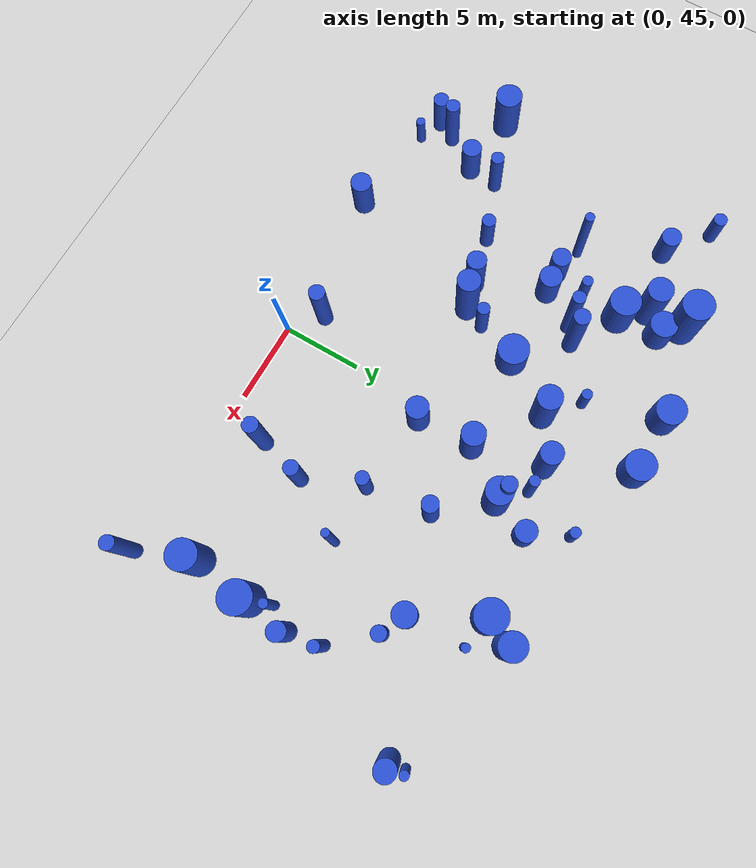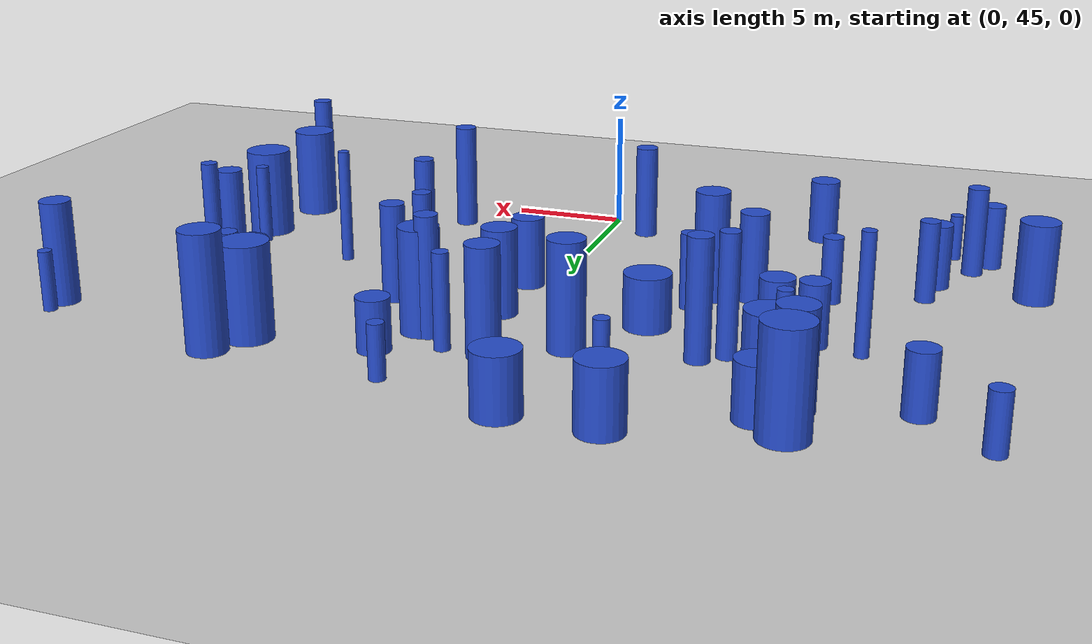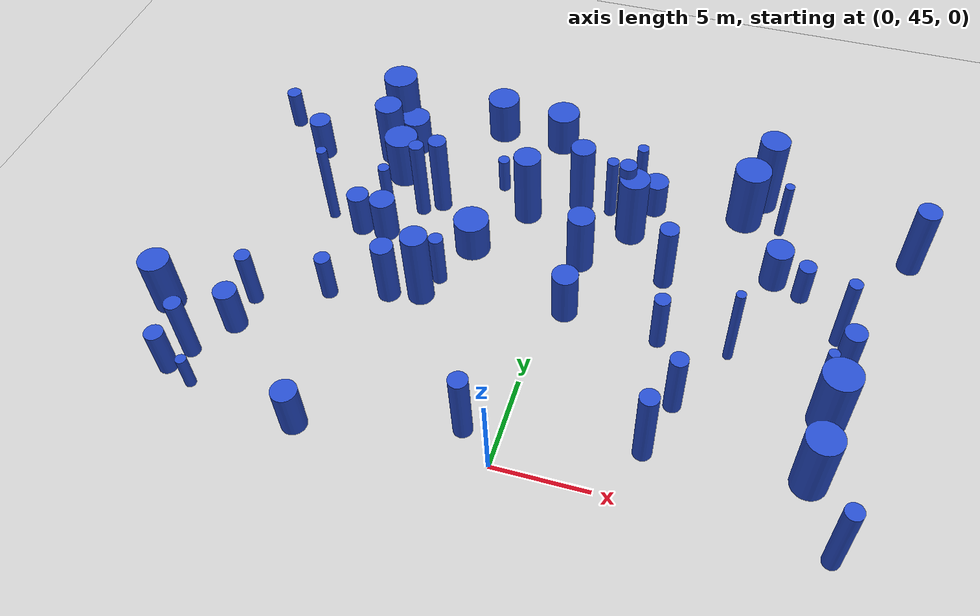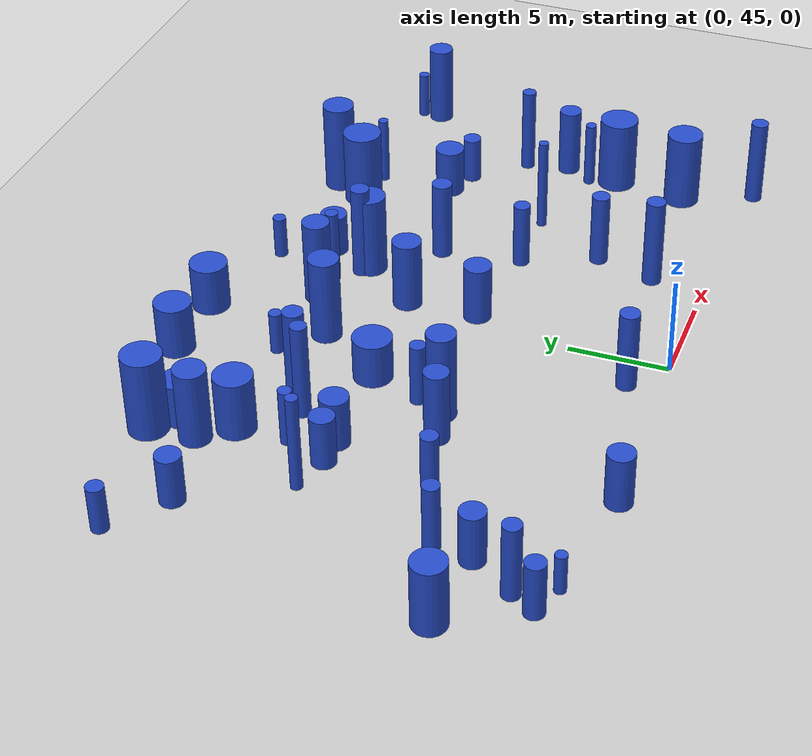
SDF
<sdf version="1.7">
 <world name="default">
  <model name="ground_plane">
   <static>1</static>
   <link name="link">
    <collision name="collision">
     <geometry><plane><normal>0 0 1</normal><size>100 100</size></plane></geometry>
     <surface>
      <contact><collide_bitmask>65535</collide_bitmask></contact>
      <friction><ode><mu>100</mu><mu2>50</mu2></ode></friction>
     </surface>
    </collision>
    <visual name="visual">
     <cast_shadows>0</cast_shadows>
     <geometry><plane><normal>0 0 1</normal><size>100 100</size></plane></geometry>
     <material>
      <script><uri>file://media/materials/scripts/gazebo.material</uri><name>Gazebo/Grey</name></script>
     </material>
    </visual>
   </link>
  </model>
  <model name="13">
   <static>0</static>
   <link name="link">
    <inertial>
     <mass>2</mass>
     <inertia><ixx>1.38583</ixx><ixy>0</ixy><ixz>0</ixz><iyy>1.38583</iyy><iyz>0</iyz><izz>0.558637</izz></inertia>
    </inertial>
    <collision name="collision">
     <geometry><cylinder><length>2.57664</length><radius>0.74742</radius></cylinder></geometry>
     <surface><contact><collide_without_contact>1</collide_without_contact></contact></surface>
    </collision>
    <visual name="visual">
     <geometry><cylinder><length>2.57664</length><radius>0.74742</radius></cylinder></geometry>
     <material>
      <script><uri>file://media/materials/scripts/gazebo.material</uri><name>Gazebo/Blue</name></script>
     </material>
    </visual>
    <gravity>0</gravity>
   </link>
   <pose>11.4004 60.1209 1.28832 0 -0 0</pose>
  </model>
  <model name="27">
   <static>0</static>
   <link name="link">
    <inertial>
     <mass>2</mass>
     <inertia><ixx>2.58788</ixx><ixy>0</ixy><ixz>0</ixz><iyy>2.58788</iyy><iyz>0</iyz><izz>0.212332</izz></inertia>
    </inertial>
    <collision name="collision">
     <geometry><cylinder><length>3.85879</length><radius>0.460795</radius></cylinder></geometry>
     <surface><contact><collide_without_contact>1</collide_without_contact></contact></surface>
    </collision>
    <visual name="visual">
     <geometry><cylinder><length>3.85879</length><radius>0.460795</radius></cylinder></geometry>
     <material>
      <script><uri>file://media/materials/scripts/gazebo.material</uri><name>Gazebo/Blue</name></script>
     </material>
    </visual>
    <gravity>0</gravity>
   </link>
   <pose>7.67121 50.7402 1.92939 0 -0 0</pose>
  </model>
  <model name="41">
   <static>0</static>
   <link name="link">
    <inertial>
     <mass>2</mass>
     <inertia><ixx>4.24794</ixx><ixy>0</ixy><ixz>0</ixz><iyy>4.24794</iyy><iyz>0</iyz><izz>0.162608</izz></inertia>
    </inertial>
    <collision name="collision">
     <geometry><cylinder><length>4.99998</length><radius>0.403246</radius></cylinder></geometry>
     <surface><contact><collide_without_contact>1</collide_without_contact></contact></surface>
    </collision>
    <visual name="visual">
     <geometry><cylinder><length>4.99998</length><radius>0.403246</radius></cylinder></geometry>
     <material>
      <script><uri>file://media/materials/scripts/gazebo.material</uri><name>Gazebo/Blue</name></script>
     </material>
    </visual>
    <gravity>0</gravity>
   </link>
   <pose>-8.70784 60.096 2.49999 0 -0 0</pose>
  </model>
  <model name="42">
   <static>0</static>
   <link name="link">
    <inertial>
     <mass>2</mass>
     <inertia>
      <ixx>4.19788</ixx>
      <ixy>0</ixy>
      <ixz>0</ixz>
      <iyy>4.19788</iyy>
      <iyz>0</iyz>
      <izz>0.0844153</izz>
     </inertia>
    </inertial>
    <collision name="collision">
     <geometry><cylinder><length>4.9934</length><radius>0.290543</radius></cylinder></geometry>
     <surface><contact><collide_without_contact>1</collide_without_contact></contact></surface>
    </collision>
    <visual name="visual">
     <geometry><cylinder><length>4.9934</length><radius>0.290543</radius></cylinder></geometry>
     <material>
      <script><uri>file://media/materials/scripts/gazebo.material</uri><name>Gazebo/Blue</name></script>
     </material>
    </visual>
    <gravity>0</gravity>
   </link>
   <pose>-13.4904 58.3486 2.4967 0 -0 0</pose>
  </model>
  <model name="56">
   <static>0</static>
   <link name="link">
    <inertial>
     <mass>2</mass>
     <inertia><ixx>1.56191</ixx><ixy>0</ixy><ixz>0</ixz><iyy>1.56191</iyy><iyz>0</iyz><izz>0.435046</izz></inertia>
    </inertial>
    <collision name="collision">
     <geometry><cylinder><length>2.84013</length><radius>0.65958</radius></cylinder></geometry>
     <surface><contact><collide_without_contact>1</collide_without_contact></contact></surface>
    </collision>
    <visual name="visual">
     <geometry><cylinder><length>2.84013</length><radius>0.65958</radius></cylinder></geometry>
     <material>
      <script><uri>file://media/materials/scripts/gazebo.material</uri><name>Gazebo/Blue</name></script>
     </material>
    </visual>
    <gravity>0</gravity>
   </link>
   <pose>-9.80475 44.7342 1.42006 0 -0 0</pose>
  </model>
  <model name="59">
   <static>0</static>
   <link name="link">
    <inertial>
     <mass>2</mass>
     <inertia><ixx>1.77923</ixx><ixy>0</ixy><ixz>0</ixz><iyy>1.77923</iyy><iyz>0</iyz><izz>0.488407</izz></inertia>
    </inertial>
    <collision name="collision">
     <geometry><cylinder><length>3.03483</length><radius>0.698861</radius></cylinder></geometry>
     <surface><contact><collide_without_contact>1</collide_without_contact></contact></surface>
    </collision>
    <visual name="visual">
     <geometry><cylinder><length>3.03483</length><radius>0.698861</radius></cylinder></geometry>
     <material>
      <script><uri>file://media/materials/scripts/gazebo.material</uri><name>Gazebo/Blue</name></script>
     </material>
    </visual>
    <gravity>0</gravity>
   </link>
   <pose>1.05025 54.9919 1.51741 0 -0 0</pose>
  </model>
  <model name="64">
   <static>0</static>
   <link name="link">
    <inertial>
     <mass>2</mass>
     <inertia><ixx>3.05222</ixx><ixy>0</ixy><ixz>0</ixz><iyy>3.05222</iyy><iyz>0</iyz><izz>0.246295</izz></inertia>
    </inertial>
    <collision name="collision">
     <geometry><cylinder><length>4.19219</length><radius>0.496281</radius></cylinder></geometry>
     <surface><contact><collide_without_contact>1</collide_without_contact></contact></surface>
    </collision>
    <visual name="visual">
     <geometry><cylinder><length>4.19219</length><radius>0.496281</radius></cylinder></geometry>
     <material>
      <script><uri>file://media/materials/scripts/gazebo.material</uri><name>Gazebo/Blue</name></script>
     </material>
    </visual>
    <gravity>0</gravity>
   </link>
   <pose>-1.80085 46.6395 2.09609 0 -0 0</pose>
  </model>
  <model name="70">
   <static>0</static>
   <link name="link">
    <inertial>
     <mass>2</mass>
     <inertia>
      <ixx>4.12077</ixx>
      <ixy>0</ixy>
      <ixz>0</ixz>
      <iyy>4.12077</iyy>
      <iyz>0</iyz>
      <izz>0.0638492</izz>
     </inertia>
    </inertial>
    <collision name="collision">
     <geometry><cylinder><length>4.95309</length><radius>0.252684</radius></cylinder></geometry>
     <surface><contact><collide_without_contact>1</collide_without_contact></contact></surface>
    </collision>
    <visual name="visual">
     <geometry><cylinder><length>4.95309</length><radius>0.252684</radius></cylinder></geometry>
     <material>
      <script><uri>file://media/materials/scripts/gazebo.material</uri><name>Gazebo/Blue</name></script>
     </material>
    </visual>
    <gravity>0</gravity>
   </link>
   <pose>9.83312 54.4652 2.47654 0 -0 0</pose>
  </model>
  <model name="90">
   <static>0</static>
   <link name="link">
    <inertial>
     <mass>2</mass>
     <inertia><ixx>2.41035</ixx><ixy>0</ixy><ixz>0</ixz><iyy>2.41035</iyy><iyz>0</iyz><izz>0.324501</izz></inertia>
    </inertial>
    <collision name="collision">
     <geometry><cylinder><length>3.67268</length><radius>0.56965</radius></cylinder></geometry>
     <surface><contact><collide_without_contact>1</collide_without_contact></contact></surface>
    </collision>
    <visual name="visual">
     <geometry><cylinder><length>3.67268</length><radius>0.56965</radius></cylinder></geometry>
     <material>
      <script><uri>file://media/materials/scripts/gazebo.material</uri><name>Gazebo/Blue</name></script>
     </material>
    </visual>
    <gravity>0</gravity>
   </link>
   <pose>15.495 54.6945 1.83634 0 -0 0</pose>
  </model>
  <model name="92">
   <static>0</static>
   <link name="link">
    <inertial>
     <mass>2</mass>
     <inertia><ixx>4.21808</ixx><ixy>0</ixy><ixz>0</ixz><iyy>4.21808</iyy><iyz>0</iyz><izz>0.253696</izz></inertia>
    </inertial>
    <collision name="collision">
     <geometry><cylinder><length>4.95453</length><radius>0.503682</radius></cylinder></geometry>
     <surface><contact><collide_without_contact>1</collide_without_contact></contact></surface>
    </collision>
    <visual name="visual">
     <geometry><cylinder><length>4.95453</length><radius>0.503682</radius></cylinder></geometry>
     <material>
      <script><uri>file://media/materials/scripts/gazebo.material</uri><name>Gazebo/Blue</name></script>
     </material>
    </visual>
    <gravity>0</gravity>
   </link>
   <pose>-7.75328 60.7804 2.47727 0 -0 0</pose>
  </model>
  <model name="96">
   <static>0</static>
   <link name="link">
    <inertial>
     <mass>2</mass>
     <inertia><ixx>1.33841</ixx><ixy>0</ixy><ixz>0</ixz><iyy>1.33841</iyy><iyz>0</iyz><izz>0.366534</izz></inertia>
    </inertial>
    <collision name="collision">
     <geometry><cylinder><length>2.63265</length><radius>0.60542</radius></cylinder></geometry>
     <surface><contact><collide_without_contact>1</collide_without_contact></contact></surface>
    </collision>
    <visual name="visual">
     <geometry><cylinder><length>2.63265</length><radius>0.60542</radius></cylinder></geometry>
     <material>
      <script><uri>file://media/materials/scripts/gazebo.material</uri><name>Gazebo/Blue</name></script>
     </material>
    </visual>
    <gravity>0</gravity>
   </link>
   <pose>-11.5472 57.8663 1.31632 0 -0 0</pose>
  </model>
  <model name="104">
   <static>0</static>
   <link name="link">
    <inertial>
     <mass>2</mass>
     <inertia>
      <ixx>0.866746</ixx>
      <ixy>0</ixy>
      <ixz>0</ixz>
      <iyy>0.866746</iyy>
      <iyz>0</iyz>
      <izz>0.105059</izz>
     </inertia>
    </inertial>
    <collision name="collision">
     <geometry><cylinder><length>2.21027</length><radius>0.324128</radius></cylinder></geometry>
     <surface><contact><collide_without_contact>1</collide_without_contact></contact></surface>
    </collision>
    <visual name="visual">
     <geometry><cylinder><length>2.21027</length><radius>0.324128</radius></cylinder></geometry>
     <material>
      <script><uri>file://media/materials/scripts/gazebo.material</uri><name>Gazebo/Blue</name></script>
     </material>
    </visual>
    <gravity>0</gravity>
   </link>
   <pose>-4.73154 63.1355 1.10514 0 -0 0</pose>
  </model>
  <model name="105">
   <static>0</static>
   <link name="link">
    <inertial>
     <mass>2</mass>
     <inertia><ixx>2.06606</ixx><ixy>0</ixy><ixz>0</ixz><iyy>2.06606</iyy><iyz>0</iyz><izz>0.17566</izz></inertia>
    </inertial>
    <collision name="collision">
     <geometry><cylinder><length>3.4452</length><radius>0.419118</radius></cylinder></geometry>
     <surface><contact><collide_without_contact>1</collide_without_contact></contact></surface>
    </collision>
    <visual name="visual">
     <geometry><cylinder><length>3.4452</length><radius>0.419118</radius></cylinder></geometry>
     <material>
      <script><uri>file://media/materials/scripts/gazebo.material</uri><name>Gazebo/Blue</name></script>
     </material>
    </visual>
    <gravity>0</gravity>
   </link>
   <pose>6.17458 54.4092 1.7226 0 -0 0</pose>
  </model>
  <model name="125">
   <static>0</static>
   <link name="link">
    <inertial>
     <mass>2</mass>
     <inertia><ixx>3.64166</ixx><ixy>0</ixy><ixz>0</ixz><iyy>3.64166</iyy><iyz>0</iyz><izz>0.572656</izz></inertia>
    </inertial>
    <collision name="collision">
     <geometry><cylinder><length>4.48687</length><radius>0.756741</radius></cylinder></geometry>
     <surface><contact><collide_without_contact>1</collide_without_contact></contact></surface>
    </collision>
    <visual name="visual">
     <geometry><cylinder><length>4.48687</length><radius>0.756741</radius></cylinder></geometry>
     <material>
      <script><uri>file://media/materials/scripts/gazebo.material</uri><name>Gazebo/Blue</name></script>
     </material>
    </visual>
    <gravity>0</gravity>
   </link>
   <pose>-2.79995 61.3753 2.24344 0 -0 0</pose>
  </model>
  <model name="130">
   <static>0</static>
   <link name="link">
    <inertial>
     <mass>2</mass>
     <inertia><ixx>3.12542</ixx><ixy>0</ixy><ixz>0</ixz><iyy>3.12542</iyy><iyz>0</iyz><izz>0.992962</izz></inertia>
    </inertial>
    <collision name="collision">
     <geometry><cylinder><length>3.9716</length><radius>0.996475</radius></cylinder></geometry>
     <surface><contact><collide_without_contact>1</collide_without_contact></contact></surface>
    </collision>
    <visual name="visual">
     <geometry><cylinder><length>3.9716</length><radius>0.996475</radius></cylinder></geometry>
     <material>
      <script><uri>file://media/materials/scripts/gazebo.material</uri><name>Gazebo/Blue</name></script>
     </material>
    </visual>
    <gravity>0</gravity>
   </link>
   <pose>9.20873 64.2267 1.9858 0 -0 0</pose>
  </model>
  <model name="138">
   <static>0</static>
   <link name="link">
    <inertial>
     <mass>2</mass>
     <inertia>
      <ixx>2.11905</ixx>
      <ixy>0</ixy>
      <ixz>0</ixz>
      <iyy>2.11905</iyy>
      <iyz>0</iyz>
      <izz>0.0820105</izz>
     </inertia>
    </inertial>
    <collision name="collision">
     <geometry><cylinder><length>3.53105</length><radius>0.286375</radius></cylinder></geometry>
     <surface><contact><collide_without_contact>1</collide_without_contact></contact></surface>
    </collision>
    <visual name="visual">
     <geometry><cylinder><length>3.53105</length><radius>0.286375</radius></cylinder></geometry>
     <material>
      <script><uri>file://media/materials/scripts/gazebo.material</uri><name>Gazebo/Blue</name></script>
     </material>
    </visual>
    <gravity>0</gravity>
   </link>
   <pose>14.6193 53.2916 1.76552 0 -0 0</pose>
  </model>
  <model name="149">
   <static>0</static>
   <link name="link">
    <inertial>
     <mass>2</mass>
     <inertia><ixx>3.48042</ixx><ixy>0</ixy><ixz>0</ixz><iyy>3.48042</iyy><iyz>0</iyz><izz>0.680354</izz></inertia>
    </inertial>
    <collision name="collision">
     <geometry><cylinder><length>4.34067</length><radius>0.824836</radius></cylinder></geometry>
     <surface><contact><collide_without_contact>1</collide_without_contact></contact></surface>
    </collision>
    <visual name="visual">
     <geometry><cylinder><length>4.34067</length><radius>0.824836</radius></cylinder></geometry>
     <material>
      <script><uri>file://media/materials/scripts/gazebo.material</uri><name>Gazebo/Blue</name></script>
     </material>
    </visual>
    <gravity>0</gravity>
   </link>
   <pose>3.18268 61.4303 2.17034 0 -0 0</pose>
  </model>
  <model name="153">
   <static>0</static>
   <link name="link">
    <inertial>
     <mass>2</mass>
     <inertia><ixx>1.40308</ixx><ixy>0</ixy><ixz>0</ixz><iyy>1.40308</iyy><iyz>0</iyz><izz>0.496893</izz></inertia>
    </inertial>
    <collision name="collision">
     <geometry><cylinder><length>2.63207</length><radius>0.704907</radius></cylinder></geometry>
     <surface><contact><collide_without_contact>1</collide_without_contact></contact></surface>
    </collision>
    <visual name="visual">
     <geometry><cylinder><length>2.63207</length><radius>0.704907</radius></cylinder></geometry>
     <material>
      <script><uri>file://media/materials/scripts/gazebo.material</uri><name>Gazebo/Blue</name></script>
     </material>
    </visual>
    <gravity>0</gravity>
   </link>
   <pose>-10.12 57.889 1.31604 0 -0 0</pose>
  </model>
  <model name="160">
   <static>0</static>
   <link name="link">
    <inertial>
     <mass>2</mass>
     <inertia><ixx>1.12383</ixx><ixy>0</ixy><ixz>0</ixz><iyy>1.12383</iyy><iyz>0</iyz><izz>0.220587</izz></inertia>
    </inertial>
    <collision name="collision">
     <geometry><cylinder><length>2.46601</length><radius>0.469667</radius></cylinder></geometry>
     <surface><contact><collide_without_contact>1</collide_without_contact></contact></surface>
    </collision>
    <visual name="visual">
     <geometry><cylinder><length>2.46601</length><radius>0.469667</radius></cylinder></geometry>
     <material>
      <script><uri>file://media/materials/scripts/gazebo.material</uri><name>Gazebo/Blue</name></script>
     </material>
    </visual>
    <gravity>0</gravity>
   </link>
   <pose>12.9425 59.3984 1.233 0 -0 0</pose>
  </model>
  <model name="165">
   <static>0</static>
   <link name="link">
    <inertial>
     <mass>2</mass>
     <inertia><ixx>1.03255</ixx><ixy>0</ixy><ixz>0</ixz><iyy>1.03255</iyy><iyz>0</iyz><izz>0.176958</izz></inertia>
    </inertial>
    <collision name="collision">
     <geometry><cylinder><length>2.38001</length><radius>0.420664</radius></cylinder></geometry>
     <surface><contact><collide_without_contact>1</collide_without_contact></contact></surface>
    </collision>
    <visual name="visual">
     <geometry><cylinder><length>2.38001</length><radius>0.420664</radius></cylinder></geometry>
     <material>
      <script><uri>file://media/materials/scripts/gazebo.material</uri><name>Gazebo/Blue</name></script>
     </material>
    </visual>
    <gravity>0</gravity>
   </link>
   <pose>-18.752 65.2232 1.19 0 -0 0</pose>
  </model>
  <model name="175">
   <static>0</static>
   <link name="link">
    <inertial>
     <mass>2</mass>
     <inertia><ixx>3.81884</ixx><ixy>0</ixy><ixz>0</ixz><iyy>3.81884</iyy><iyz>0</iyz><izz>0.234939</izz></inertia>
    </inertial>
    <collision name="collision">
     <geometry><cylinder><length>4.71256</length><radius>0.484705</radius></cylinder></geometry>
     <surface><contact><collide_without_contact>1</collide_without_contact></contact></surface>
    </collision>
    <visual name="visual">
     <geometry><cylinder><length>4.71256</length><radius>0.484705</radius></cylinder></geometry>
     <material>
      <script><uri>file://media/materials/scripts/gazebo.material</uri><name>Gazebo/Blue</name></script>
     </material>
    </visual>
    <gravity>0</gravity>
   </link>
   <pose>6.81399 47.7231 2.35628 0 -0 0</pose>
  </model>
  <model name="183">
   <static>0</static>
   <link name="link">
    <inertial>
     <mass>2</mass>
     <inertia>
      <ixx>2.21192</ixx>
      <ixy>0</ixy>
      <ixz>0</ixz>
      <iyy>2.21192</iyy>
      <iyz>0</iyz>
      <izz>0.0688999</izz>
     </inertia>
    </inertial>
    <collision name="collision">
     <geometry><cylinder><length>3.61453</length><radius>0.262488</radius></cylinder></geometry>
     <surface><contact><collide_without_contact>1</collide_without_contact></contact></surface>
    </collision>
    <visual name="visual">
     <geometry><cylinder><length>3.61453</length><radius>0.262488</radius></cylinder></geometry>
     <material>
      <script><uri>file://media/materials/scripts/gazebo.material</uri><name>Gazebo/Blue</name></script>
     </material>
    </visual>
    <gravity>0</gravity>
   </link>
   <pose>11.2791 63.8366 1.80726 0 -0 0</pose>
  </model>
  <model name="195">
   <static>0</static>
   <link name="link">
    <inertial>
     <mass>2</mass>
     <inertia><ixx>1.29107</ixx><ixy>0</ixy><ixz>0</ixz><iyy>1.29107</iyy><iyz>0</iyz><izz>0.375446</izz></inertia>
    </inertial>
    <collision name="collision">
     <geometry><cylinder><length>2.57295</length><radius>0.612736</radius></cylinder></geometry>
     <surface><contact><collide_without_contact>1</collide_without_contact></contact></surface>
    </collision>
    <visual name="visual">
     <geometry><cylinder><length>2.57295</length><radius>0.612736</radius></cylinder></geometry>
     <material>
      <script><uri>file://media/materials/scripts/gazebo.material</uri><name>Gazebo/Blue</name></script>
     </material>
    </visual>
    <gravity>0</gravity>
   </link>
   <pose>-16.0945 63.1043 1.28648 0 -0 0</pose>
  </model>
  <model name="197">
   <static>0</static>
   <link name="link">
    <inertial>
     <mass>2</mass>
     <inertia><ixx>1.33691</ixx><ixy>0</ixy><ixz>0</ixz><iyy>1.33691</iyy><iyz>0</iyz><izz>0.943179</izz></inertia>
    </inertial>
    <collision name="collision">
     <geometry><cylinder><length>2.27858</length><radius>0.971174</radius></cylinder></geometry>
     <surface><contact><collide_without_contact>1</collide_without_contact></contact></surface>
    </collision>
    <visual name="visual">
     <geometry><cylinder><length>2.27858</length><radius>0.971174</radius></cylinder></geometry>
     <material>
      <script><uri>file://media/materials/scripts/gazebo.material</uri><name>Gazebo/Blue</name></script>
     </material>
    </visual>
    <gravity>0</gravity>
   </link>
   <pose>-5.05153 58.0722 1.13929 0 -0 0</pose>
  </model>
  <model name="198">
   <static>0</static>
   <link name="link">
    <inertial>
     <mass>2</mass>
     <inertia><ixx>2.29288</ixx><ixy>0</ixy><ixz>0</ixz><iyy>2.29288</iyy><iyz>0</iyz><izz>0.669061</izz></inertia>
    </inertial>
    <collision name="collision">
     <geometry><cylinder><length>3.42784</length><radius>0.817961</radius></cylinder></geometry>
     <surface><contact><collide_without_contact>1</collide_without_contact></contact></surface>
    </collision>
    <visual name="visual">
     <geometry><cylinder><length>3.42784</length><radius>0.817961</radius></cylinder></geometry>
     <material>
      <script><uri>file://media/materials/scripts/gazebo.material</uri><name>Gazebo/Blue</name></script>
     </material>
    </visual>
    <gravity>0</gravity>
   </link>
   <pose>-19.3718 49.9754 1.71392 0 -0 0</pose>
  </model>
  <model name="200">
   <static>0</static>
   <link name="link">
    <inertial>
     <mass>2</mass>
     <inertia><ixx>1.22683</ixx><ixy>0</ixy><ixz>0</ixz><iyy>1.22683</iyy><iyz>0</iyz><izz>0.70683</izz></inertia>
    </inertial>
    <collision name="collision">
     <geometry><cylinder><length>2.28921</length><radius>0.840732</radius></cylinder></geometry>
     <surface><contact><collide_without_contact>1</collide_without_contact></contact></surface>
    </collision>
    <visual name="visual">
     <geometry><cylinder><length>2.28921</length><radius>0.840732</radius></cylinder></geometry>
     <material>
      <script><uri>file://media/materials/scripts/gazebo.material</uri><name>Gazebo/Blue</name></script>
     </material>
    </visual>
    <gravity>0</gravity>
   </link>
   <pose>-10.8668 65.1792 1.14461 0 -0 0</pose>
  </model>
  <model name="201">
   <static>0</static>
   <link name="link">
    <inertial>
     <mass>2</mass>
     <inertia><ixx>1.42204</ixx><ixy>0</ixy><ixz>0</ixz><iyy>1.42204</iyy><iyz>0</iyz><izz>0.184462</izz></inertia>
    </inertial>
    <collision name="collision">
     <geometry><cylinder><length>2.82469</length><radius>0.429491</radius></cylinder></geometry>
     <surface><contact><collide_without_contact>1</collide_without_contact></contact></surface>
    </collision>
    <visual name="visual">
     <geometry><cylinder><length>2.82469</length><radius>0.429491</radius></cylinder></geometry>
     <material>
      <script><uri>file://media/materials/scripts/gazebo.material</uri><name>Gazebo/Blue</name></script>
     </material>
    </visual>
    <gravity>0</gravity>
   </link>
   <pose>-11.4462 52.8769 1.41234 0 -0 0</pose>
  </model>
  <model name="217">
   <static>0</static>
   <link name="link">
    <inertial>
     <mass>2</mass>
     <inertia><ixx>3.55952</ixx><ixy>0</ixy><ixz>0</ixz><iyy>3.55952</iyy><iyz>0</iyz><izz>0.466842</izz></inertia>
    </inertial>
    <collision name="collision">
     <geometry><cylinder><length>4.46728</length><radius>0.683259</radius></cylinder></geometry>
     <surface><contact><collide_without_contact>1</collide_without_contact></contact></surface>
    </collision>
    <visual name="visual">
     <geometry><cylinder><length>4.46728</length><radius>0.683259</radius></cylinder></geometry>
     <material>
      <script><uri>file://media/materials/scripts/gazebo.material</uri><name>Gazebo/Blue</name></script>
     </material>
    </visual>
    <gravity>0</gravity>
   </link>
   <pose>-0.044682 62.9396 2.23364 0 -0 0</pose>
  </model>
  <model name="225">
   <static>0</static>
   <link name="link">
    <inertial>
     <mass>2</mass>
     <inertia><ixx>1.49377</ixx><ixy>0</ixy><ixz>0</ixz><iyy>1.49377</iyy><iyz>0</iyz><izz>0.108361</izz></inertia>
    </inertial>
    <collision name="collision">
     <geometry><cylinder><length>2.93897</length><radius>0.329182</radius></cylinder></geometry>
     <surface><contact><collide_without_contact>1</collide_without_contact></contact></surface>
    </collision>
    <visual name="visual">
     <geometry><cylinder><length>2.93897</length><radius>0.329182</radius></cylinder></geometry>
     <material>
      <script><uri>file://media/materials/scripts/gazebo.material</uri><name>Gazebo/Blue</name></script>
     </material>
    </visual>
    <gravity>0</gravity>
   </link>
   <pose>-10.799 59.959 1.46948 0 -0 0</pose>
  </model>
  <model name="229">
   <static>0</static>
   <link name="link">
    <inertial>
     <mass>2</mass>
     <inertia><ixx>2.52971</ixx><ixy>0</ixy><ixz>0</ixz><iyy>2.52971</iyy><iyz>0</iyz><izz>0.537861</izz></inertia>
    </inertial>
    <collision name="collision">
     <geometry><cylinder><length>3.68302</length><radius>0.73339</radius></cylinder></geometry>
     <surface><contact><collide_without_contact>1</collide_without_contact></contact></surface>
    </collision>
    <visual name="visual">
     <geometry><cylinder><length>3.68302</length><radius>0.73339</radius></cylinder></geometry>
     <material>
      <script><uri>file://media/materials/scripts/gazebo.material</uri><name>Gazebo/Blue</name></script>
     </material>
    </visual>
    <gravity>0</gravity>
   </link>
   <pose>0.956331 58.6072 1.84151 0 -0 0</pose>
  </model>
  <model name="248">
   <static>0</static>
   <link name="link">
    <inertial>
     <mass>2</mass>
     <inertia><ixx>1.80162</ixx><ixy>0</ixy><ixz>0</ixz><iyy>1.80162</iyy><iyz>0</iyz><izz>0.156119</izz></inertia>
    </inertial>
    <collision name="collision">
     <geometry><cylinder><length>3.2158</length><radius>0.395119</radius></cylinder></geometry>
     <surface><contact><collide_without_contact>1</collide_without_contact></contact></surface>
    </collision>
    <visual name="visual">
     <geometry><cylinder><length>3.2158</length><radius>0.395119</radius></cylinder></geometry>
     <material>
      <script><uri>file://media/materials/scripts/gazebo.material</uri><name>Gazebo/Blue</name></script>
     </material>
    </visual>
    <gravity>0</gravity>
   </link>
   <pose>-6.07605 55.4187 1.6079 0 -0 0</pose>
  </model>
  <model name="261">
   <static>0</static>
   <link name="link">
    <inertial>
     <mass>2</mass>
     <inertia><ixx>3.46702</ixx><ixy>0</ixy><ixz>0</ixz><iyy>3.46702</iyy><iyz>0</iyz><izz>0.955568</izz></inertia>
    </inertial>
    <collision name="collision">
     <geometry><cylinder><length>4.23502</length><radius>0.977532</radius></cylinder></geometry>
     <surface><contact><collide_without_contact>1</collide_without_contact></contact></surface>
    </collision>
    <visual name="visual">
     <geometry><cylinder><length>4.23502</length><radius>0.977532</radius></cylinder></geometry>
     <material>
      <script><uri>file://media/materials/scripts/gazebo.material</uri><name>Gazebo/Blue</name></script>
     </material>
    </visual>
    <gravity>0</gravity>
   </link>
   <pose>-12.0325 66.2878 2.11751 0 -0 0</pose>
  </model>
  <model name="268">
   <static>0</static>
   <link name="link">
    <inertial>
     <mass>2</mass>
     <inertia><ixx>2.02512</ixx><ixy>0</ixy><ixz>0</ixz><iyy>2.02512</iyy><iyz>0</iyz><izz>0.898971</izz></inertia>
    </inertial>
    <collision name="collision">
     <geometry><cylinder><length>3.07471</length><radius>0.948141</radius></cylinder></geometry>
     <surface><contact><collide_without_contact>1</collide_without_contact></contact></surface>
    </collision>
    <visual name="visual">
     <geometry><cylinder><length>3.07471</length><radius>0.948141</radius></cylinder></geometry>
     <material>
      <script><uri>file://media/materials/scripts/gazebo.material</uri><name>Gazebo/Blue</name></script>
     </material>
    </visual>
    <gravity>0</gravity>
   </link>
   <pose>-10.7081 62.5166 1.53735 0 -0 0</pose>
  </model>
  <model name="272">
   <static>0</static>
   <link name="link">
    <inertial>
     <mass>2</mass>
     <inertia><ixx>2.61201</ixx><ixy>0</ixy><ixz>0</ixz><iyy>2.61201</iyy><iyz>0</iyz><izz>0.199286</izz></inertia>
    </inertial>
    <collision name="collision">
     <geometry><cylinder><length>3.88255</length><radius>0.446414</radius></cylinder></geometry>
     <surface><contact><collide_without_contact>1</collide_without_contact></contact></surface>
    </collision>
    <visual name="visual">
     <geometry><cylinder><length>3.88255</length><radius>0.446414</radius></cylinder></geometry>
     <material>
      <script><uri>file://media/materials/scripts/gazebo.material</uri><name>Gazebo/Blue</name></script>
     </material>
    </visual>
    <gravity>0</gravity>
   </link>
   <pose>-16.7154 47.3811 1.94128 0 -0 0</pose>
  </model>
  <model name="273">
   <static>0</static>
   <link name="link">
    <inertial>
     <mass>2</mass>
     <inertia><ixx>3.02338</ixx><ixy>0</ixy><ixz>0</ixz><iyy>3.02338</iyy><iyz>0</iyz><izz>0.263045</izz></inertia>
    </inertial>
    <collision name="collision">
     <geometry><cylinder><length>4.16547</length><radius>0.512879</radius></cylinder></geometry>
     <surface><contact><collide_without_contact>1</collide_without_contact></contact></surface>
    </collision>
    <visual name="visual">
     <geometry><cylinder><length>4.16547</length><radius>0.512879</radius></cylinder></geometry>
     <material>
      <script><uri>file://media/materials/scripts/gazebo.material</uri><name>Gazebo/Blue</name></script>
     </material>
    </visual>
    <gravity>0</gravity>
   </link>
   <pose>5.66343 58.4826 2.08273 0 -0 0</pose>
  </model>
  <model name="301">
   <static>0</static>
   <link name="link">
    <inertial>
     <mass>2</mass>
     <inertia><ixx>3.06758</ixx><ixy>0</ixy><ixz>0</ixz><iyy>3.06758</iyy><iyz>0</iyz><izz>0.977596</izz></inertia>
    </inertial>
    <collision name="collision">
     <geometry><cylinder><length>3.93354</length><radius>0.988735</radius></cylinder></geometry>
     <surface><contact><collide_without_contact>1</collide_without_contact></contact></surface>
    </collision>
    <visual name="visual">
     <geometry><cylinder><length>3.93354</length><radius>0.988735</radius></cylinder></geometry>
     <material>
      <script><uri>file://media/materials/scripts/gazebo.material</uri><name>Gazebo/Blue</name></script>
     </material>
    </visual>
    <gravity>0</gravity>
   </link>
   <pose>15.07 51.8835 1.96677 0 -0 0</pose>
  </model>
  <model name="305">
   <static>0</static>
   <link name="link">
    <inertial>
     <mass>2</mass>
     <inertia><ixx>3.37429</ixx><ixy>0</ixy><ixz>0</ixz><iyy>3.37429</iyy><iyz>0</iyz><izz>0.407416</izz></inertia>
    </inertial>
    <collision name="collision">
     <geometry><cylinder><length>4.36159</length><radius>0.638292</radius></cylinder></geometry>
     <surface><contact><collide_without_contact>1</collide_without_contact></contact></surface>
    </collision>
    <visual name="visual">
     <geometry><cylinder><length>4.36159</length><radius>0.638292</radius></cylinder></geometry>
     <material>
      <script><uri>file://media/materials/scripts/gazebo.material</uri><name>Gazebo/Blue</name></script>
     </material>
    </visual>
    <gravity>0</gravity>
   </link>
   <pose>18.4566 63.1694 2.1808 0 -0 0</pose>
  </model>
  <model name="315">
   <static>0</static>
   <link name="link">
    <inertial>
     <mass>2</mass>
     <inertia><ixx>3.59317</ixx><ixy>0</ixy><ixz>0</ixz><iyy>3.59317</iyy><iyz>0</iyz><izz>0.126983</izz></inertia>
    </inertial>
    <collision name="collision">
     <geometry><cylinder><length>4.60196</length><radius>0.356347</radius></cylinder></geometry>
     <surface><contact><collide_without_contact>1</collide_without_contact></contact></surface>
    </collision>
    <visual name="visual">
     <geometry><cylinder><length>4.60196</length><radius>0.356347</radius></cylinder></geometry>
     <material>
      <script><uri>file://media/materials/scripts/gazebo.material</uri><name>Gazebo/Blue</name></script>
     </material>
    </visual>
    <gravity>0</gravity>
   </link>
   <pose>15.1045 56.9183 2.30098 0 -0 0</pose>
  </model>
  <model name="338">
   <static>0</static>
   <link name="link">
    <inertial>
     <mass>2</mass>
     <inertia>
      <ixx>0.719601</ixx>
      <ixy>0</ixy>
      <ixz>0</ixz>
      <iyy>0.719601</iyy>
      <iyz>0</iyz>
      <izz>0.0800429</izz>
     </inertia>
    </inertial>
    <collision name="collision">
     <geometry><cylinder><length>2.01928</length><radius>0.282918</radius></cylinder></geometry>
     <surface><contact><collide_without_contact>1</collide_without_contact></contact></surface>
    </collision>
    <visual name="visual">
     <geometry><cylinder><length>2.01928</length><radius>0.282918</radius></cylinder></geometry>
     <material>
      <script><uri>file://media/materials/scripts/gazebo.material</uri><name>Gazebo/Blue</name></script>
     </material>
    </visual>
    <gravity>0</gravity>
   </link>
   <pose>-15.8139 45.5466 1.00964 0 -0 0</pose>
  </model>
  <model name="352">
   <static>0</static>
   <link name="link">
    <inertial>
     <mass>2</mass>
     <inertia><ixx>3.65363</ixx><ixy>0</ixy><ixz>0</ixz><iyy>3.65363</iyy><iyz>0</iyz><izz>0.19464</izz></inertia>
    </inertial>
    <collision name="collision">
     <geometry><cylinder><length>4.61929</length><radius>0.44118</radius></cylinder></geometry>
     <surface><contact><collide_without_contact>1</collide_without_contact></contact></surface>
    </collision>
    <visual name="visual">
     <geometry><cylinder><length>4.61929</length><radius>0.44118</radius></cylinder></geometry>
     <material>
      <script><uri>file://media/materials/scripts/gazebo.material</uri><name>Gazebo/Blue</name></script>
     </material>
    </visual>
    <gravity>0</gravity>
   </link>
   <pose>15.9931 44.5761 2.30964 0 -0 0</pose>
  </model>
  <model name="353">
   <static>0</static>
   <link name="link">
    <inertial>
     <mass>2</mass>
     <inertia><ixx>2.90569</ixx><ixy>0</ixy><ixz>0</ixz><iyy>2.90569</iyy><iyz>0</iyz><izz>0.608785</izz></inertia>
    </inertial>
    <collision name="collision">
     <geometry><cylinder><length>3.95067</length><radius>0.780246</radius></cylinder></geometry>
     <surface><contact><collide_without_contact>1</collide_without_contact></contact></surface>
    </collision>
    <visual name="visual">
     <geometry><cylinder><length>3.95067</length><radius>0.780246</radius></cylinder></geometry>
     <material>
      <script><uri>file://media/materials/scripts/gazebo.material</uri><name>Gazebo/Blue</name></script>
     </material>
    </visual>
    <gravity>0</gravity>
   </link>
   <pose>-11.9513 63.9859 1.97533 0 -0 0</pose>
  </model>
  <model name="358">
   <static>0</static>
   <link name="link">
    <inertial>
     <mass>2</mass>
     <inertia><ixx>1.50842</ixx><ixy>0</ixy><ixz>0</ixz><iyy>1.50842</iyy><iyz>0</iyz><izz>0.892496</izz></inertia>
    </inertial>
    <collision name="collision">
     <geometry><cylinder><length>2.52449</length><radius>0.94472</radius></cylinder></geometry>
     <surface><contact><collide_without_contact>1</collide_without_contact></contact></surface>
    </collision>
    <visual name="visual">
     <geometry><cylinder><length>2.52449</length><radius>0.94472</radius></cylinder></geometry>
     <material>
      <script><uri>file://media/materials/scripts/gazebo.material</uri><name>Gazebo/Blue</name></script>
     </material>
    </visual>
    <gravity>0</gravity>
   </link>
   <pose>-2.40157 67.7049 1.26225 0 -0 0</pose>
  </model>
  <model name="368">
   <static>0</static>
   <link name="link">
    <inertial>
     <mass>2</mass>
     <inertia><ixx>2.07611</ixx><ixy>0</ixy><ixz>0</ixz><iyy>2.07611</iyy><iyz>0</iyz><izz>0.170026</izz></inertia>
    </inertial>
    <collision name="collision">
     <geometry><cylinder><length>3.45638</length><radius>0.412343</radius></cylinder></geometry>
     <surface><contact><collide_without_contact>1</collide_without_contact></contact></surface>
    </collision>
    <visual name="visual">
     <geometry><cylinder><length>3.45638</length><radius>0.412343</radius></cylinder></geometry>
     <material>
      <script><uri>file://media/materials/scripts/gazebo.material</uri><name>Gazebo/Blue</name></script>
     </material>
    </visual>
    <gravity>0</gravity>
   </link>
   <pose>-15.1207 51.4491 1.72819 0 -0 0</pose>
  </model>
  <model name="385">
   <static>0</static>
   <link name="link">
    <inertial>
     <mass>2</mass>
     <inertia><ixx>1.47316</ixx><ixy>0</ixy><ixz>0</ixz><iyy>1.47316</iyy><iyz>0</iyz><izz>0.379872</izz></inertia>
    </inertial>
    <collision name="collision">
     <geometry><cylinder><length>2.77477</length><radius>0.616337</radius></cylinder></geometry>
     <surface><contact><collide_without_contact>1</collide_without_contact></contact></surface>
    </collision>
    <visual name="visual">
     <geometry><cylinder><length>2.77477</length><radius>0.616337</radius></cylinder></geometry>
     <material>
      <script><uri>file://media/materials/scripts/gazebo.material</uri><name>Gazebo/Blue</name></script>
     </material>
    </visual>
    <gravity>0</gravity>
   </link>
   <pose>-15.3191 49.5435 1.38739 0 -0 0</pose>
  </model>
  <model name="397">
   <static>0</static>
   <link name="link">
    <inertial>
     <mass>2</mass>
     <inertia><ixx>1.43466</ixx><ixy>0</ixy><ixz>0</ixz><iyy>1.43466</iyy><iyz>0</iyz><izz>0.241559</izz></inertia>
    </inertial>
    <collision name="collision">
     <geometry><cylinder><length>2.80772</length><radius>0.491487</radius></cylinder></geometry>
     <surface><contact><collide_without_contact>1</collide_without_contact></contact></surface>
    </collision>
    <visual name="visual">
     <geometry><cylinder><length>2.80772</length><radius>0.491487</radius></cylinder></geometry>
     <material>
      <script><uri>file://media/materials/scripts/gazebo.material</uri><name>Gazebo/Blue</name></script>
     </material>
    </visual>
    <gravity>0</gravity>
   </link>
   <pose>-17.389 46.1633 1.40386 0 -0 0</pose>
  </model>
  <model name="408">
   <static>0</static>
   <link name="link">
    <inertial>
     <mass>2</mass>
     <inertia><ixx>4.26641</ixx><ixy>0</ixy><ixz>0</ixz><iyy>4.26641</iyy><iyz>0</iyz><izz>0.671896</izz></inertia>
    </inertial>
    <collision name="collision">
     <geometry><cylinder><length>4.85621</length><radius>0.819693</radius></cylinder></geometry>
     <surface><contact><collide_without_contact>1</collide_without_contact></contact></surface>
    </collision>
    <visual name="visual">
     <geometry><cylinder><length>4.85621</length><radius>0.819693</radius></cylinder></geometry>
     <material>
      <script><uri>file://media/materials/scripts/gazebo.material</uri><name>Gazebo/Blue</name></script>
     </material>
    </visual>
    <gravity>0</gravity>
   </link>
   <pose>10.0449 65.8809 2.4281 0 -0 0</pose>
  </model>
  <model name="417">
   <static>0</static>
   <link name="link">
    <inertial>
     <mass>2</mass>
     <inertia><ixx>4.20319</ixx><ixy>0</ixy><ixz>0</ixz><iyy>4.20319</iyy><iyz>0</iyz><izz>0.223096</izz></inertia>
    </inertial>
    <collision name="collision">
     <geometry><cylinder><length>4.95478</length><radius>0.47233</radius></cylinder></geometry>
     <surface><contact><collide_without_contact>1</collide_without_contact></contact></surface>
    </collision>
    <visual name="visual">
     <geometry><cylinder><length>4.95478</length><radius>0.47233</radius></cylinder></geometry>
     <material>
      <script><uri>file://media/materials/scripts/gazebo.material</uri><name>Gazebo/Blue</name></script>
     </material>
    </visual>
    <gravity>0</gravity>
   </link>
   <pose>2.72812 61.7298 2.47739 0 -0 0</pose>
  </model>
  <model name="420">
   <static>0</static>
   <link name="link">
    <inertial>
     <mass>2</mass>
     <inertia><ixx>1.64346</ixx><ixy>0</ixy><ixz>0</ixz><iyy>1.64346</iyy><iyz>0</iyz><izz>0.85094</izz></inertia>
    </inertial>
    <collision name="collision">
     <geometry><cylinder><length>2.70332</length><radius>0.922464</radius></cylinder></geometry>
     <surface><contact><collide_without_contact>1</collide_without_contact></contact></surface>
    </collision>
    <visual name="visual">
     <geometry><cylinder><length>2.70332</length><radius>0.922464</radius></cylinder></geometry>
     <material>
      <script><uri>file://media/materials/scripts/gazebo.material</uri><name>Gazebo/Blue</name></script>
     </material>
    </visual>
    <gravity>0</gravity>
   </link>
   <pose>-6.14695 67.7842 1.35166 0 -0 0</pose>
  </model>
  <model name="453">
   <static>0</static>
   <link name="link">
    <inertial>
     <mass>2</mass>
     <inertia><ixx>2.58867</ixx><ixy>0</ixy><ixz>0</ixz><iyy>2.58867</iyy><iyz>0</iyz><izz>0.367255</izz></inertia>
    </inertial>
    <collision name="collision">
     <geometry><cylinder><length>3.79872</length><radius>0.606015</radius></cylinder></geometry>
     <surface><contact><collide_without_contact>1</collide_without_contact></contact></surface>
    </collision>
    <visual name="visual">
     <geometry><cylinder><length>3.79872</length><radius>0.606015</radius></cylinder></geometry>
     <material>
      <script><uri>file://media/materials/scripts/gazebo.material</uri><name>Gazebo/Blue</name></script>
     </material>
    </visual>
    <gravity>0</gravity>
   </link>
   <pose>-8.34119 53.6844 1.89936 0 -0 0</pose>
  </model>
  <model name="468">
   <static>0</static>
   <link name="link">
    <inertial>
     <mass>2</mass>
     <inertia><ixx>1.02788</ixx><ixy>0</ixy><ixz>0</ixz><iyy>1.02788</iyy><iyz>0</iyz><izz>0.45679</izz></inertia>
    </inertial>
    <collision name="collision">
     <geometry><cylinder><length>2.19018</length><radius>0.675863</radius></cylinder></geometry>
     <surface><contact><collide_without_contact>1</collide_without_contact></contact></surface>
    </collision>
    <visual name="visual">
     <geometry><cylinder><length>2.19018</length><radius>0.675863</radius></cylinder></geometry>
     <material>
      <script><uri>file://media/materials/scripts/gazebo.material</uri><name>Gazebo/Blue</name></script>
     </material>
    </visual>
    <gravity>0</gravity>
   </link>
   <pose>4.08206 63.7787 1.09509 0 -0 0</pose>
  </model>
  <model name="473">
   <static>0</static>
   <link name="link">
    <inertial>
     <mass>2</mass>
     <inertia><ixx>3.10819</ixx><ixy>0</ixy><ixz>0</ixz><iyy>3.10819</iyy><iyz>0</iyz><izz>0.840155</izz></inertia>
    </inertial>
    <collision name="collision">
     <geometry><cylinder><length>4.01605</length><radius>0.916599</radius></cylinder></geometry>
     <surface><contact><collide_without_contact>1</collide_without_contact></contact></surface>
    </collision>
    <visual name="visual">
     <geometry><cylinder><length>4.01605</length><radius>0.916599</radius></cylinder></geometry>
     <material>
      <script><uri>file://media/materials/scripts/gazebo.material</uri><name>Gazebo/Blue</name></script>
     </material>
    </visual>
    <gravity>0</gravity>
   </link>
   <pose>14.6085 48.1814 2.00803 0 -0 0</pose>
  </model>
  <model name="484">
   <static>0</static>
   <link name="link">
    <inertial>
     <mass>2</mass>
     <inertia>
      <ixx>1.11409</ixx>
      <ixy>0</ixy>
      <ixz>0</ixz>
      <iyy>1.11409</iyy>
      <iyz>0</iyz>
      <izz>0.0816194</izz>
     </inertia>
    </inertial>
    <collision name="collision">
     <geometry><cylinder><length>2.53766</length><radius>0.285691</radius></cylinder></geometry>
     <surface><contact><collide_without_contact>1</collide_without_contact></contact></surface>
    </collision>
    <visual name="visual">
     <geometry><cylinder><length>2.53766</length><radius>0.285691</radius></cylinder></geometry>
     <material>
      <script><uri>file://media/materials/scripts/gazebo.material</uri><name>Gazebo/Blue</name></script>
     </material>
    </visual>
    <gravity>0</gravity>
   </link>
   <pose>18.4213 64.1766 1.26883 0 -0 0</pose>
  </model>
  <model name="486">
   <static>0</static>
   <link name="link">
    <inertial>
     <mass>2</mass>
     <inertia><ixx>3.84337</ixx><ixy>0</ixy><ixz>0</ixz><iyy>3.84337</iyy><iyz>0</iyz><izz>0.511288</izz></inertia>
    </inertial>
    <collision name="collision">
     <geometry><cylinder><length>4.63965</length><radius>0.715044</radius></cylinder></geometry>
     <surface><contact><collide_without_contact>1</collide_without_contact></contact></surface>
    </collision>
    <visual name="visual">
     <geometry><cylinder><length>4.63965</length><radius>0.715044</radius></cylinder></geometry>
     <material>
      <script><uri>file://media/materials/scripts/gazebo.material</uri><name>Gazebo/Blue</name></script>
     </material>
    </visual>
    <gravity>0</gravity>
   </link>
   <pose>-6.65879 54.0594 2.31983 0 -0 0</pose>
  </model>
  <model name="491">
   <static>0</static>
   <link name="link">
    <inertial>
     <mass>2</mass>
     <inertia>
      <ixx>0.878394</ixx>
      <ixy>0</ixy>
      <ixz>0</ixz>
      <iyy>0.878394</iyy>
      <iyz>0</iyz>
      <izz>0.110769</izz>
     </inertia>
    </inertial>
    <collision name="collision">
     <geometry><cylinder><length>2.22217</length><radius>0.33282</radius></cylinder></geometry>
     <surface><contact><collide_without_contact>1</collide_without_contact></contact></surface>
    </collision>
    <visual name="visual">
     <geometry><cylinder><length>2.22217</length><radius>0.33282</radius></cylinder></geometry>
     <material>
      <script><uri>file://media/materials/scripts/gazebo.material</uri><name>Gazebo/Blue</name></script>
     </material>
    </visual>
    <gravity>0</gravity>
   </link>
   <pose>2.79484 66.222 1.11109 0 -0 0</pose>
  </model>
  <model name="497">
   <static>0</static>
   <link name="link">
    <inertial>
     <mass>2</mass>
     <inertia><ixx>2.63746</ixx><ixy>0</ixy><ixz>0</ixz><iyy>2.63746</iyy><iyz>0</iyz><izz>0.109951</izz></inertia>
    </inertial>
    <collision name="collision">
     <geometry><cylinder><length>3.93636</length><radius>0.331589</radius></cylinder></geometry>
     <surface><contact><collide_without_contact>1</collide_without_contact></contact></surface>
    </collision>
    <visual name="visual">
     <geometry><cylinder><length>3.93636</length><radius>0.331589</radius></cylinder></geometry>
     <material>
      <script><uri>file://media/materials/scripts/gazebo.material</uri><name>Gazebo/Blue</name></script>
     </material>
    </visual>
    <gravity>0</gravity>
   </link>
   <pose>1.68436 62.8432 1.96818 0 -0 0</pose>
  </model>
 </world>
</sdf>
